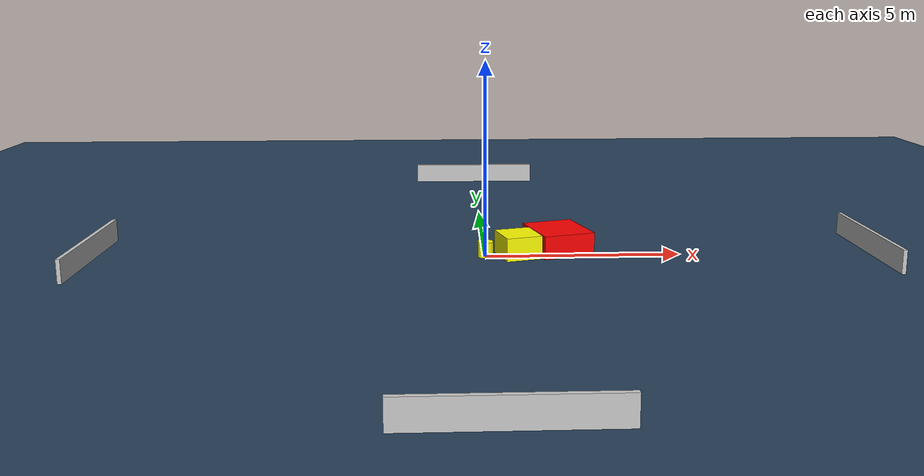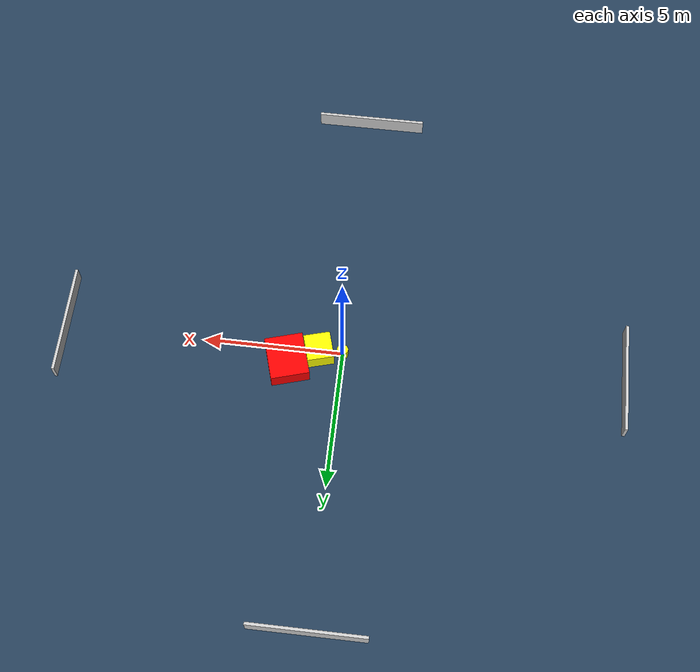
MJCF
<?xml version="1.0" ?>
<mujoco model="generated_environment">
  <option timestep="0.01" integrator="RK4" cone="elliptic"/>
  <default>
    <geom density="1"/>
  </default>
  <asset>
    <texture builtin="gradient" height="3072" name="skybox" rgb1="0.3 0.5 0.7" rgb2="0 0 0" type="skybox" width="512"/>
    <texture builtin="checker" height="300" name="groundplane" rgb1="0.2 0.3 0.4" rgb2="0.1 0.2 0.3" type="2d" width="300"/>
    <material name="groundplane" reflectance="0.2" texrepeat="5 5" texture="groundplane"/>
  </asset>
  <worldbody>
    <light dir="0 0 -1" directional="true" pos="0 0 1.5"/>
    <geom condim="3" friction="0.5 0.005 0.001" material="groundplane" name="floor" pos="0 0 0" size="0 0 0.05" type="plane"/>
    <body name="walls">
      <geom name="wall_1" condim="4" pos="-10.0 0.0 0.3" rgba="0.800000011920929 0.800000011920929 0.800000011920929 1.0" size="0.05 2.0 0.3" type="box"/>
      <geom name="wall_2" condim="4" pos="10.0 0.0 0.3" rgba="0.800000011920929 0.800000011920929 0.800000011920929 1.0" size="0.05 2.0 0.3" type="box"/>
      <geom name="wall_3" condim="4" pos="0.0 -10.0 0.3" rgba="0.800000011920929 0.800000011920929 0.800000011920929 1.0" size="2.0 0.05 0.3" type="box"/>
      <geom name="wall_4" condim="4" pos="0.0 10.0 0.3" rgba="0.800000011920929 0.800000011920929 0.800000011920929 1.0" size="2.0 0.05 0.3" type="box"/>
    </body>
    <body name="robot">
      <joint name="joint_x" type="slide" pos="0 0 0" axis="1 0 0"/>
      <joint name="joint_y" type="slide" pos="0 0 0" axis="0 1 0"/>
      <geom name="robot" type="cylinder" pos="0.0 0.0 0.2" size="0.2 0.2 0.0" mass="5.0" friction="1.0 0.005 0.0001" condim="4" rgba="1.0 1.0 0.0 1.0"/>
    </body>
    <body name="obstacle_1_movable">
      <geom name="obstacle_1_movable" condim="4" pos="0.8461801293372645 0.050985691041404296 0.3" euler="0 0 105.8860654571738" friction="0.0 0.005 0.001" rgba="1.0 1.0 0.0 1.0" size="0.4958320332906786 0.4753298572737824 0.3" type="box" mass="0.1"/>
      <joint type="free"/>
    </body>
    <body name="obstacle_2_static">
      <geom name="obstacle_2_static" condim="4" pos="1.919523190633191 0.5513351425580298 0.3" euler="0 0 196.71298008813505" friction="0.0 0.005 0.001" rgba="1.0 0.0 0.0 1.0" size="0.6834922163493493 0.7877118157319438 0.3" type="box"/>
    </body>
  </worldbody>
  <actuator>
    <motor name="actuator_x" joint="joint_x" gear="1" ctrlrange="-1 1"/>
    <motor name="actuator_y" joint="joint_y" gear="1" ctrlrange="-1 1"/>
  </actuator>
</mujoco>
